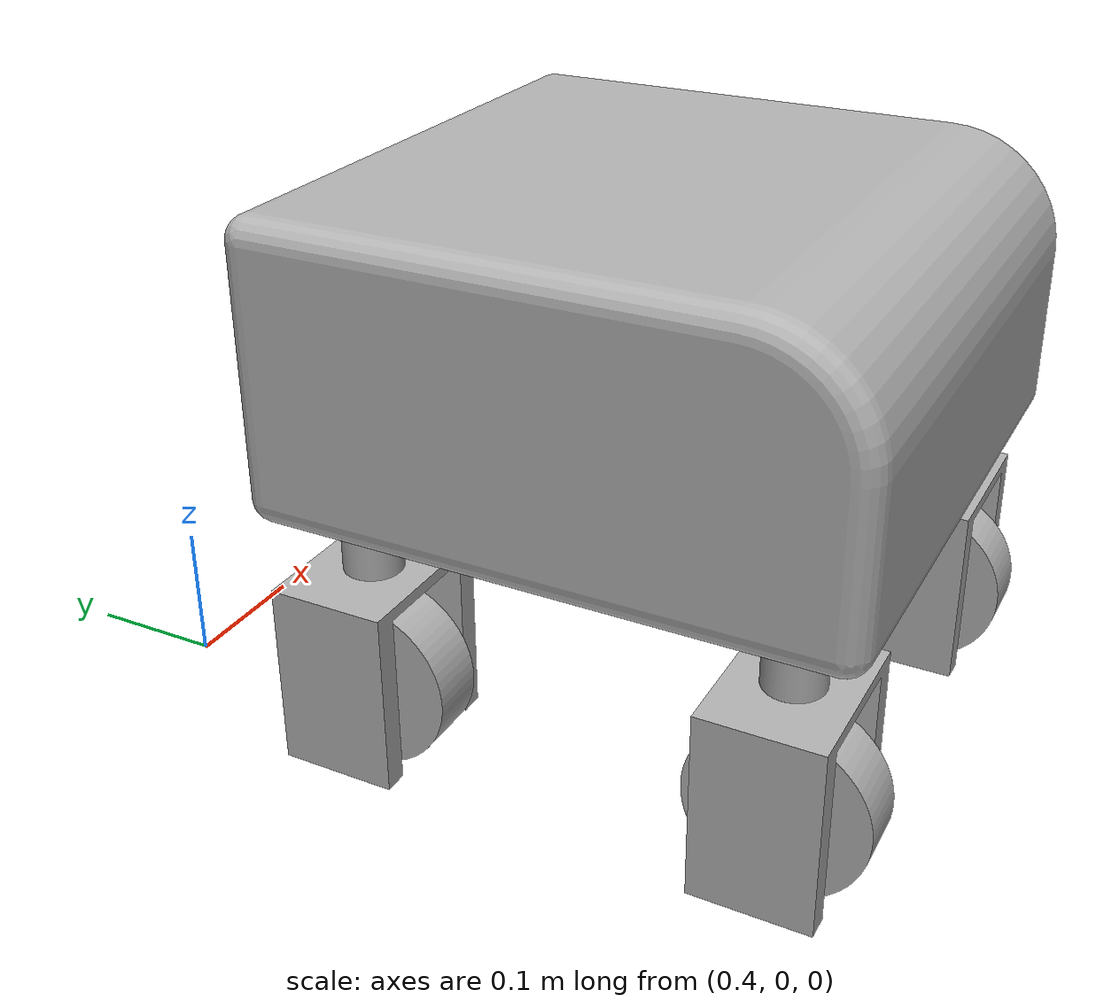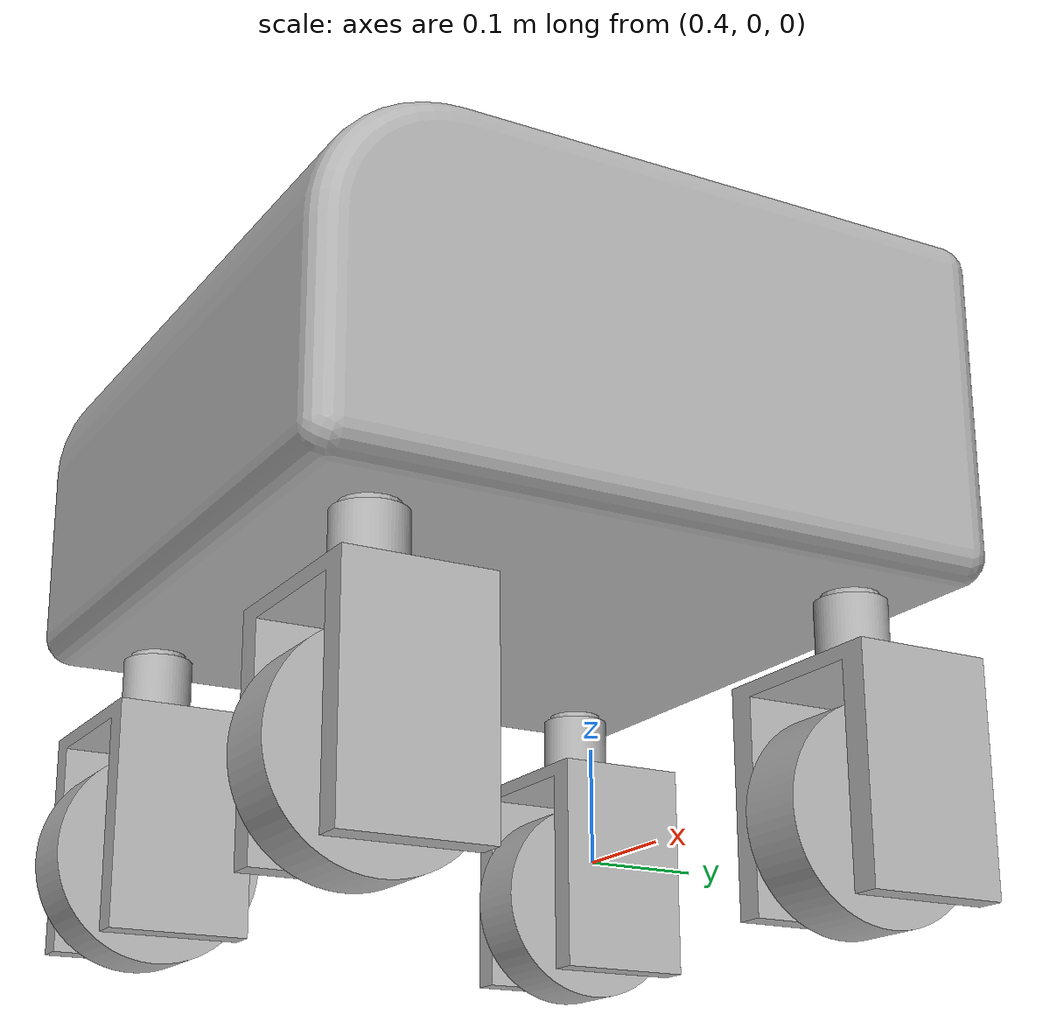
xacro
<?xml version="1.0" ?>
<robot name="swirl" xmlns:xacro="http://www.ros.org/wiki/xacro">

<xacro:include filename="$(find swirl_description)/urdf/materials.xacro" />
<xacro:include filename="$(find swirl_description)/urdf/swirl.trans" />
<xacro:include filename="$(find swirl_description)/urdf/swirl.gazebo" />
<link name="base_link">
  <inertial>
    <origin rpy="0 0 0" xyz="0.6922686540964833 -0.26128073596365803 0.2158474261194058"/>
    <mass value="479.497224901014"/>
    <inertia ixx="12.089536" ixy="-0.0" ixz="-0.0" iyy="12.346832" iyz="-0.186766" izz="19.577149"/>
  </inertial>
  <visual>
    <origin rpy="0 0 0" xyz="0 0 0"/>
    <geometry>
      <mesh filename="package://swirl_description/meshes/base_link.stl" scale="0.001 0.001 0.001"/>
    </geometry>
    <material name="silver"/>
  </visual>
  <collision>
    <origin rpy="0 0 0" xyz="0 0 0"/>
    <geometry>
      <mesh filename="package://swirl_description/meshes/base_link.stl" scale="0.001 0.001 0.001"/>
    </geometry>
  </collision>
</link>

<link name="Component7_1">
  <inertial>
    <origin rpy="0 0 0" xyz="-3.4590351472019165e-07 -7.473281049552583e-09 -0.0742391858641826"/>
    <mass value="6.795460093227189"/>
    <inertia ixx="0.020347" ixy="0.0" ixz="0.0" iyy="0.035138" iyz="0.0" izz="0.02467"/>
  </inertial>
  <visual>
    <origin rpy="0 0 0" xyz="-0.872269 0.445082 -0.037605"/>
    <geometry>
      <mesh filename="package://swirl_description/meshes/Component7_1.stl" scale="0.001 0.001 0.001"/>
    </geometry>
    <material name="silver"/>
  </visual>
  <collision>
    <origin rpy="0 0 0" xyz="-0.872269 0.445082 -0.037605"/>
    <geometry>
      <mesh filename="package://swirl_description/meshes/Component7_1.stl" scale="0.001 0.001 0.001"/>
    </geometry>
  </collision>
</link>

<link name="Component7_2">
  <inertial>
    <origin rpy="0 0 0" xyz="-3.4590351494223626e-07 -7.473281854464275e-09 -0.07423918586418317"/>
    <mass value="6.795460093227189"/>
    <inertia ixx="0.020347" ixy="0.0" ixz="-0.0" iyy="0.035138" iyz="-0.0" izz="0.02467"/>
  </inertial>
  <visual>
    <origin rpy="0 0 0" xyz="-0.872269 0.085082 -0.037605"/>
    <geometry>
      <mesh filename="package://swirl_description/meshes/Component7_2.stl" scale="0.001 0.001 0.001"/>
    </geometry>
    <material name="silver"/>
  </visual>
  <collision>
    <origin rpy="0 0 0" xyz="-0.872269 0.085082 -0.037605"/>
    <geometry>
      <mesh filename="package://swirl_description/meshes/Component7_2.stl" scale="0.001 0.001 0.001"/>
    </geometry>
  </collision>
</link>

<link name="Component7_3">
  <inertial>
    <origin rpy="0 0 0" xyz="-3.4590351483121395e-07 -7.473281549152944e-09 -0.0742391858641821"/>
    <mass value="6.795460093227189"/>
    <inertia ixx="0.020347" ixy="0.0" ixz="-0.0" iyy="0.035138" iyz="-0.0" izz="0.02467"/>
  </inertial>
  <visual>
    <origin rpy="0 0 0" xyz="-0.512269 0.445082 -0.037605"/>
    <geometry>
      <mesh filename="package://swirl_description/meshes/Component7_3.stl" scale="0.001 0.001 0.001"/>
    </geometry>
    <material name="silver"/>
  </visual>
  <collision>
    <origin rpy="0 0 0" xyz="-0.512269 0.445082 -0.037605"/>
    <geometry>
      <mesh filename="package://swirl_description/meshes/Component7_3.stl" scale="0.001 0.001 0.001"/>
    </geometry>
  </collision>
</link>

<link name="Component7_4">
  <inertial>
    <origin rpy="0 0 0" xyz="-3.4590351483121395e-07 -7.47328150751958e-09 -0.07423918586418257"/>
    <mass value="6.795460093227189"/>
    <inertia ixx="0.020347" ixy="0.0" ixz="-0.0" iyy="0.035138" iyz="-0.0" izz="0.02467"/>
  </inertial>
  <visual>
    <origin rpy="0 0 0" xyz="-0.512269 0.085082 -0.037605"/>
    <geometry>
      <mesh filename="package://swirl_description/meshes/Component7_4.stl" scale="0.001 0.001 0.001"/>
    </geometry>
    <material name="silver"/>
  </visual>
  <collision>
    <origin rpy="0 0 0" xyz="-0.512269 0.085082 -0.037605"/>
    <geometry>
      <mesh filename="package://swirl_description/meshes/Component7_4.stl" scale="0.001 0.001 0.001"/>
    </geometry>
  </collision>
</link>

<link name="Component6_4">
  <inertial>
    <origin rpy="0 0 0" xyz="-0.512269 0.085082 -0.062605"/>
    <mass value="0.0"/>
    <inertia ixx="0.0" ixy="0.0" ixz="0.0" iyy="0.0" iyz="0.0" izz="0.0"/>
  </inertial>
  <visual>
    <origin rpy="0 0 0" xyz="-0.512269 0.085082 -0.062605"/>
    <geometry>
      <mesh filename="package://swirl_description/meshes/Component6_4.stl" scale="0.001 0.001 0.001"/>
    </geometry>
    <material name="silver"/>
  </visual>
  <collision>
    <origin rpy="0 0 0" xyz="-0.512269 0.085082 -0.062605"/>
    <geometry>
      <mesh filename="package://swirl_description/meshes/Component6_4.stl" scale="0.001 0.001 0.001"/>
    </geometry>
  </collision>
</link>

<link name="Component6_1">
  <inertial>
    <origin rpy="0 0 0" xyz="-0.872269 0.445082 -0.062605"/>
    <mass value="0.0"/>
    <inertia ixx="0.0" ixy="0.0" ixz="0.0" iyy="0.0" iyz="0.0" izz="0.0"/>
  </inertial>
  <visual>
    <origin rpy="0 0 0" xyz="-0.872269 0.445082 -0.062605"/>
    <geometry>
      <mesh filename="package://swirl_description/meshes/Component6_1.stl" scale="0.001 0.001 0.001"/>
    </geometry>
    <material name="silver"/>
  </visual>
  <collision>
    <origin rpy="0 0 0" xyz="-0.872269 0.445082 -0.062605"/>
    <geometry>
      <mesh filename="package://swirl_description/meshes/Component6_1.stl" scale="0.001 0.001 0.001"/>
    </geometry>
  </collision>
</link>

<link name="Component6_3">
  <inertial>
    <origin rpy="0 0 0" xyz="-0.512269 0.445082 -0.062605"/>
    <mass value="0.0"/>
    <inertia ixx="0.0" ixy="0.0" ixz="0.0" iyy="0.0" iyz="0.0" izz="0.0"/>
  </inertial>
  <visual>
    <origin rpy="0 0 0" xyz="-0.512269 0.445082 -0.062605"/>
    <geometry>
      <mesh filename="package://swirl_description/meshes/Component6_3.stl" scale="0.001 0.001 0.001"/>
    </geometry>
    <material name="silver"/>
  </visual>
  <collision>
    <origin rpy="0 0 0" xyz="-0.512269 0.445082 -0.062605"/>
    <geometry>
      <mesh filename="package://swirl_description/meshes/Component6_3.stl" scale="0.001 0.001 0.001"/>
    </geometry>
  </collision>
</link>

<link name="Component6_2">
  <inertial>
    <origin rpy="0 0 0" xyz="-0.872269 0.085082 -0.062605"/>
    <mass value="0.0"/>
    <inertia ixx="0.0" ixy="0.0" ixz="0.0" iyy="0.0" iyz="0.0" izz="0.0"/>
  </inertial>
  <visual>
    <origin rpy="0 0 0" xyz="-0.872269 0.085082 -0.062605"/>
    <geometry>
      <mesh filename="package://swirl_description/meshes/Component6_2.stl" scale="0.001 0.001 0.001"/>
    </geometry>
    <material name="silver"/>
  </visual>
  <collision>
    <origin rpy="0 0 0" xyz="-0.872269 0.085082 -0.062605"/>
    <geometry>
      <mesh filename="package://swirl_description/meshes/Component6_2.stl" scale="0.001 0.001 0.001"/>
    </geometry>
  </collision>
</link>

<link name="Component2_1">
  <inertial>
    <origin rpy="0 0 0" xyz="-0.512269 0.445082 -0.087605"/>
    <mass value="0.0"/>
    <inertia ixx="0.0" ixy="0.0" ixz="0.0" iyy="0.0" iyz="0.0" izz="0.0"/>
  </inertial>
  <visual>
    <origin rpy="0 0 0" xyz="-0.512269 0.445082 -0.087605"/>
    <geometry>
      <mesh filename="package://swirl_description/meshes/Component2_1.stl" scale="0.001 0.001 0.001"/>
    </geometry>
    <material name="silver"/>
  </visual>
  <collision>
    <origin rpy="0 0 0" xyz="-0.512269 0.445082 -0.087605"/>
    <geometry>
      <mesh filename="package://swirl_description/meshes/Component2_1.stl" scale="0.001 0.001 0.001"/>
    </geometry>
  </collision>
</link>

<link name="Component2_2">
  <inertial>
    <origin rpy="0 0 0" xyz="-0.872269 0.445082 -0.087605"/>
    <mass value="0.0"/>
    <inertia ixx="0.0" ixy="0.0" ixz="0.0" iyy="0.0" iyz="0.0" izz="0.0"/>
  </inertial>
  <visual>
    <origin rpy="0 0 0" xyz="-0.872269 0.445082 -0.087605"/>
    <geometry>
      <mesh filename="package://swirl_description/meshes/Component2_2.stl" scale="0.001 0.001 0.001"/>
    </geometry>
    <material name="silver"/>
  </visual>
  <collision>
    <origin rpy="0 0 0" xyz="-0.872269 0.445082 -0.087605"/>
    <geometry>
      <mesh filename="package://swirl_description/meshes/Component2_2.stl" scale="0.001 0.001 0.001"/>
    </geometry>
  </collision>
</link>

<link name="Component4_1">
  <inertial>
    <origin rpy="0 0 0" xyz="-0.512269 0.085082 -0.087605"/>
    <mass value="0.0"/>
    <inertia ixx="0.0" ixy="0.0" ixz="0.0" iyy="0.0" iyz="0.0" izz="0.0"/>
  </inertial>
  <visual>
    <origin rpy="0 0 0" xyz="-0.512269 0.085082 -0.087605"/>
    <geometry>
      <mesh filename="package://swirl_description/meshes/Component4_1.stl" scale="0.001 0.001 0.001"/>
    </geometry>
    <material name="silver"/>
  </visual>
  <collision>
    <origin rpy="0 0 0" xyz="-0.512269 0.085082 -0.087605"/>
    <geometry>
      <mesh filename="package://swirl_description/meshes/Component4_1.stl" scale="0.001 0.001 0.001"/>
    </geometry>
  </collision>
</link>

<link name="Component3_1">
  <inertial>
    <origin rpy="0 0 0" xyz="-0.872269 0.085082 -0.087605"/>
    <mass value="0.0"/>
    <inertia ixx="0.0" ixy="0.0" ixz="0.0" iyy="0.0" iyz="0.0" izz="0.0"/>
  </inertial>
  <visual>
    <origin rpy="0 0 0" xyz="-0.872269 0.085082 -0.087605"/>
    <geometry>
      <mesh filename="package://swirl_description/meshes/Component3_1.stl" scale="0.001 0.001 0.001"/>
    </geometry>
    <material name="silver"/>
  </visual>
  <collision>
    <origin rpy="0 0 0" xyz="-0.872269 0.085082 -0.087605"/>
    <geometry>
      <mesh filename="package://swirl_description/meshes/Component3_1.stl" scale="0.001 0.001 0.001"/>
    </geometry>
  </collision>
</link>

<link name="Component8_3">
  <inertial>
    <origin rpy="0 0 0" xyz="-3.4590351483121395e-07 -7.473281327108339e-09 2.331599293636799e-07"/>
    <mass value="6.1653755826699665"/>
    <inertia ixx="0.019267" ixy="0.0" ixz="0.0" iyy="0.010918" iyz="0.0" izz="0.010918"/>
  </inertial>
  <visual>
    <origin rpy="0 0 0" xyz="-0.512269 0.445082 0.062395"/>
    <geometry>
      <mesh filename="package://swirl_description/meshes/Component8_3.stl" scale="0.001 0.001 0.001"/>
    </geometry>
    <material name="silver"/>
  </visual>
  <collision>
    <origin rpy="0 0 0" xyz="-0.512269 0.445082 0.062395"/>
    <geometry>
      <mesh filename="package://swirl_description/meshes/Component8_3.stl" scale="0.001 0.001 0.001"/>
    </geometry>
  </collision>
</link>

<link name="Component8_2">
  <inertial>
    <origin rpy="0 0 0" xyz="-3.4590351516428086e-07 -7.473280771996826e-09 2.331599286836683e-07"/>
    <mass value="6.1653755826699665"/>
    <inertia ixx="0.019267" ixy="0.0" ixz="0.0" iyy="0.010918" iyz="0.0" izz="0.010918"/>
  </inertial>
  <visual>
    <origin rpy="0 0 0" xyz="-0.872269 0.445082 0.062395"/>
    <geometry>
      <mesh filename="package://swirl_description/meshes/Component8_2.stl" scale="0.001 0.001 0.001"/>
    </geometry>
    <material name="silver"/>
  </visual>
  <collision>
    <origin rpy="0 0 0" xyz="-0.872269 0.445082 0.062395"/>
    <geometry>
      <mesh filename="package://swirl_description/meshes/Component8_2.stl" scale="0.001 0.001 0.001"/>
    </geometry>
  </collision>
</link>

<link name="Component8_1">
  <inertial>
    <origin rpy="0 0 0" xyz="-3.4590351494223626e-07 -7.473281854464275e-09 2.3315992807998454e-07"/>
    <mass value="6.1653755826699665"/>
    <inertia ixx="0.019267" ixy="-0.0" ixz="-0.0" iyy="0.010918" iyz="0.0" izz="0.010918"/>
  </inertial>
  <visual>
    <origin rpy="0 0 0" xyz="-0.872269 0.085082 0.062395"/>
    <geometry>
      <mesh filename="package://swirl_description/meshes/Component8_1.stl" scale="0.001 0.001 0.001"/>
    </geometry>
    <material name="silver"/>
  </visual>
  <collision>
    <origin rpy="0 0 0" xyz="-0.872269 0.085082 0.062395"/>
    <geometry>
      <mesh filename="package://swirl_description/meshes/Component8_1.stl" scale="0.001 0.001 0.001"/>
    </geometry>
  </collision>
</link>

<link name="Component8_4">
  <inertial>
    <origin rpy="0 0 0" xyz="-3.4590351505325856e-07 -7.473281535275156e-09 2.3315992875305724e-07"/>
    <mass value="6.1653755826699665"/>
    <inertia ixx="0.019267" ixy="0.0" ixz="0.0" iyy="0.010918" iyz="0.0" izz="0.010918"/>
  </inertial>
  <visual>
    <origin rpy="0 0 0" xyz="-0.512269 0.085082 0.062395"/>
    <geometry>
      <mesh filename="package://swirl_description/meshes/Component8_4.stl" scale="0.001 0.001 0.001"/>
    </geometry>
    <material name="silver"/>
  </visual>
  <collision>
    <origin rpy="0 0 0" xyz="-0.512269 0.085082 0.062395"/>
    <geometry>
      <mesh filename="package://swirl_description/meshes/Component8_4.stl" scale="0.001 0.001 0.001"/>
    </geometry>
  </collision>
</link>

<joint name="Rigid5" type="fixed">
  <origin rpy="0 0 0" xyz="0.0 0.0 -0.025"/>
  <parent link="Component6_1"/>
  <child link="Component7_1"/>
</joint>

<joint name="Rigid6" type="fixed">
  <origin rpy="0 0 0" xyz="0.0 0.0 -0.025"/>
  <parent link="Component6_2"/>
  <child link="Component7_2"/>
</joint>

<joint name="Rigid7" type="fixed">
  <origin rpy="0 0 0" xyz="0.0 0.0 -0.025"/>
  <parent link="Component6_3"/>
  <child link="Component7_3"/>
</joint>

<joint name="Rigid8" type="fixed">
  <origin rpy="0 0 0" xyz="0.0 0.0 -0.025"/>
  <parent link="Component6_4"/>
  <child link="Component7_4"/>
</joint>

<joint name="RB_swirl" type="continuous">
  <origin rpy="0 0 0" xyz="0.0 0.0 -0.025"/>
  <parent link="Component4_1"/>
  <child link="Component6_4"/>
  <axis xyz="-0.0 -0.0 -1.0"/>
</joint>

<joint name="LF_swirl" type="continuous">
  <origin rpy="0 0 0" xyz="0.0 0.0 -0.025"/>
  <parent link="Component2_2"/>
  <child link="Component6_1"/>
  <axis xyz="0.0 -0.0 -1.0"/>
</joint>

<joint name="RF_swirl" type="continuous">
  <origin rpy="0 0 0" xyz="0.0 0.0 -0.025"/>
  <parent link="Component2_1"/>
  <child link="Component6_3"/>
  <axis xyz="0.0 -0.0 -1.0"/>
</joint>

<joint name="LB_swirl" type="continuous">
  <origin rpy="0 0 0" xyz="0.0 0.0 -0.025"/>
  <parent link="Component3_1"/>
  <child link="Component6_2"/>
  <axis xyz="0.0 -0.0 -1.0"/>
</joint>

<joint name="Rigid14" type="fixed">
  <origin rpy="0 0 0" xyz="0.512269 -0.445082 0.087605"/>
  <parent link="base_link"/>
  <child link="Component2_1"/>
</joint>

<joint name="Rigid15" type="fixed">
  <origin rpy="0 0 0" xyz="0.872269 -0.445082 0.087605"/>
  <parent link="base_link"/>
  <child link="Component2_2"/>
</joint>

<joint name="Rigid16" type="fixed">
  <origin rpy="0 0 0" xyz="0.512269 -0.085082 0.087605"/>
  <parent link="base_link"/>
  <child link="Component4_1"/>
</joint>

<joint name="Rigid17" type="fixed">
  <origin rpy="0 0 0" xyz="0.872269 -0.085082 0.087605"/>
  <parent link="base_link"/>
  <child link="Component3_1"/>
</joint>

<joint name="RF_wheel" type="continuous">
  <origin rpy="0 0 0" xyz="0.0 0.0 -0.1"/>
  <parent link="Component7_3"/>
  <child link="Component8_3"/>
  <axis xyz="1.0 0.0 -0.0"/>
</joint>

<joint name="LF_wheel" type="continuous">
  <origin rpy="0 0 0" xyz="0.0 0.0 -0.1"/>
  <parent link="Component7_1"/>
  <child link="Component8_2"/>
  <axis xyz="1.0 0.0 0.0"/>
</joint>

<joint name="LB_wheel" type="continuous">
  <origin rpy="0 0 0" xyz="0.0 0.0 -0.1"/>
  <parent link="Component7_2"/>
  <child link="Component8_1"/>
  <axis xyz="1.0 0.0 -0.0"/>
</joint>

<joint name="RB_wheel" type="continuous">
  <origin rpy="0 0 0" xyz="0.0 0.0 -0.1"/>
  <parent link="Component7_4"/>
  <child link="Component8_4"/>
  <axis xyz="1.0 0.0 0.0"/>
</joint>

</robot>

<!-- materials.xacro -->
<robot name="swirl" xmlns:xacro="http://www.ros.org/wiki/xacro" >

<material name="silver">
  <color rgba="0.700 0.700 0.700 1.000"/>
</material>

</robot>

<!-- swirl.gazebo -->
<robot name="swirl" xmlns:xacro="http://www.ros.org/wiki/xacro" >

<xacro:property name="body_color" value="Gazebo/Silver" />

<gazebo>
  <plugin filename="libgazebo_ros_control.so" name="control"/>
</gazebo>
<gazebo reference="base_link">
  <material>${body_color}</material>
  <mu1>0.2</mu1>
  <mu2>0.2</mu2>
  <selfCollide>true</selfCollide>
  <gravity>true</gravity>
</gazebo>

<gazebo reference="Component7_1">
  <material>${body_color}</material>
  <mu1>0.2</mu1>
  <mu2>0.2</mu2>
  <selfCollide>true</selfCollide>
</gazebo>

<gazebo reference="Component7_2">
  <material>${body_color}</material>
  <mu1>0.2</mu1>
  <mu2>0.2</mu2>
  <selfCollide>true</selfCollide>
</gazebo>

<gazebo reference="Component7_3">
  <material>${body_color}</material>
  <mu1>0.2</mu1>
  <mu2>0.2</mu2>
  <selfCollide>true</selfCollide>
</gazebo>

<gazebo reference="Component7_4">
  <material>${body_color}</material>
  <mu1>0.2</mu1>
  <mu2>0.2</mu2>
  <selfCollide>true</selfCollide>
</gazebo>

<gazebo reference="Component6_4">
  <material>${body_color}</material>
  <mu1>0.2</mu1>
  <mu2>0.2</mu2>
  <selfCollide>true</selfCollide>
</gazebo>

<gazebo reference="Component6_1">
  <material>${body_color}</material>
  <mu1>0.2</mu1>
  <mu2>0.2</mu2>
  <selfCollide>true</selfCollide>
</gazebo>

<gazebo reference="Component6_3">
  <material>${body_color}</material>
  <mu1>0.2</mu1>
  <mu2>0.2</mu2>
  <selfCollide>true</selfCollide>
</gazebo>

<gazebo reference="Component6_2">
  <material>${body_color}</material>
  <mu1>0.2</mu1>
  <mu2>0.2</mu2>
  <selfCollide>true</selfCollide>
</gazebo>

<gazebo reference="Component2_1">
  <material>${body_color}</material>
  <mu1>0.2</mu1>
  <mu2>0.2</mu2>
  <selfCollide>true</selfCollide>
</gazebo>

<gazebo reference="Component2_2">
  <material>${body_color}</material>
  <mu1>0.2</mu1>
  <mu2>0.2</mu2>
  <selfCollide>true</selfCollide>
</gazebo>

<gazebo reference="Component4_1">
  <material>${body_color}</material>
  <mu1>0.2</mu1>
  <mu2>0.2</mu2>
  <selfCollide>true</selfCollide>
</gazebo>

<gazebo reference="Component3_1">
  <material>${body_color}</material>
  <mu1>0.2</mu1>
  <mu2>0.2</mu2>
  <selfCollide>true</selfCollide>
</gazebo>

<gazebo reference="Component8_3">
  <material>${body_color}</material>
  <mu1>0.2</mu1>
  <mu2>0.2</mu2>
  <selfCollide>true</selfCollide>
</gazebo>

<gazebo reference="Component8_2">
  <material>${body_color}</material>
  <mu1>0.2</mu1>
  <mu2>0.2</mu2>
  <selfCollide>true</selfCollide>
</gazebo>

<gazebo reference="Component8_1">
  <material>${body_color}</material>
  <mu1>0.2</mu1>
  <mu2>0.2</mu2>
  <selfCollide>true</selfCollide>
</gazebo>

<gazebo reference="Component8_4">
  <material>${body_color}</material>
  <mu1>0.2</mu1>
  <mu2>0.2</mu2>
  <selfCollide>true</selfCollide>
</gazebo>

</robot>
